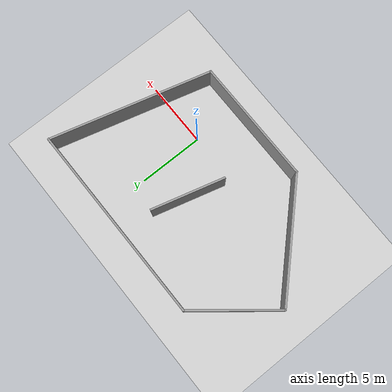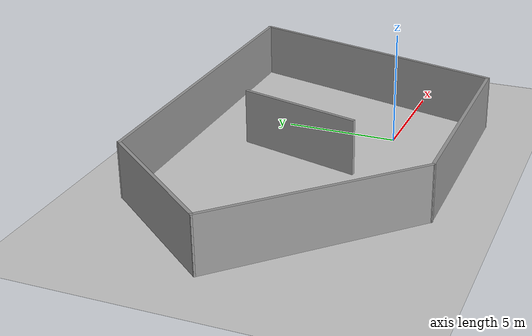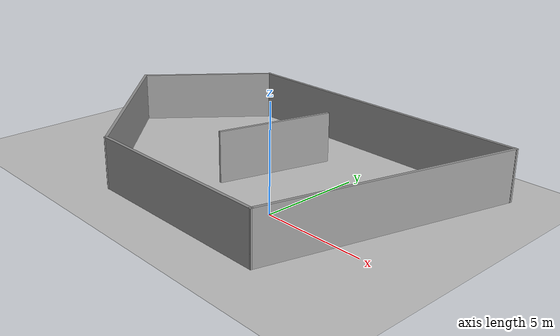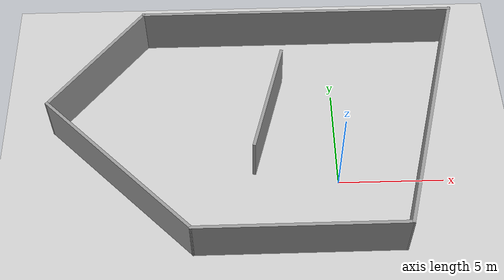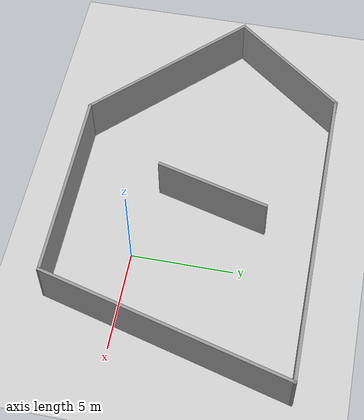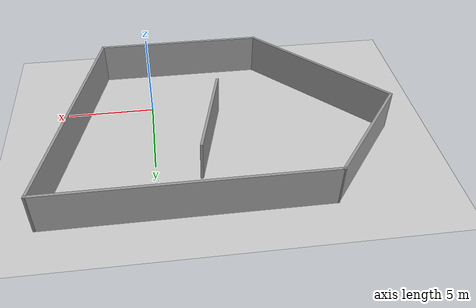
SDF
<sdf version="1.7">
 <world name="default">
  <light name="sun" type="directional">
   <pose>0 0 10 0 -0 0</pose>
   <diffuse>0.8 0.8 0.8 1</diffuse>
   <specular>0.2 0.2 0.2 1</specular>
   <attenuation>
    <range>1000</range>
    <constant>0.9</constant>
    <linear>0.01</linear>
    <quadratic>0.001</quadratic>
   </attenuation>
   <direction>-0.5 0.1 -0.9</direction>
   <spot><inner_angle>0</inner_angle><outer_angle>0</outer_angle><falloff>0</falloff></spot>
  </light>
  <model name="ground_plane">
   <static>1</static>
   <link name="link">
    <collision name="collision">
     <geometry><plane><normal>0 0 1</normal><size>100 100</size></plane></geometry>
     <surface>
      <contact><collide_bitmask>65535</collide_bitmask></contact>
      <friction><ode><mu>100</mu><mu2>50</mu2></ode></friction>
     </surface>
    </collision>
    <visual name="visual">
     <cast_shadows>0</cast_shadows>
     <geometry><plane><normal>0 0 1</normal><size>100 100</size></plane></geometry>
     <material>
      <script><uri>file://media/materials/scripts/gazebo.material</uri><name>Gazebo/Grey</name></script>
     </material>
    </visual>
   </link>
  </model>
  <gravity>0 0 -9.8</gravity>
  <magnetic_field>6e-06 2.3e-05 -4.2e-05</magnetic_field>
  <atmosphere type="adiabatic"/>
  <physics type="ode">
   <max_step_size>0.001</max_step_size>
   <real_time_factor>1</real_time_factor>
   <real_time_update_rate>1000</real_time_update_rate>
  </physics>
  <scene><ambient>0.4 0.4 0.4 1</ambient><background>0.7 0.7 0.7 1</background><shadows>1</shadows></scene>
  <spherical_coordinates>
   <surface_model>EARTH_WGS84</surface_model>
   <latitude_deg>0</latitude_deg>
   <longitude_deg>0</longitude_deg>
   <elevation>0</elevation>
   <heading_deg>0</heading_deg>
  </spherical_coordinates>
  <model name="Untitled">
   <pose>-3.75183 2.53512 0 0 -0 0</pose>
   <link name="Wall_17">
    <collision name="Wall_17_Collision">
     <geometry><box><size>15.5 0.15 2.5</size></box></geometry>
     <pose>0 0 1.25 0 -0 0</pose>
    </collision>
    <visual name="Wall_17_Visual">
     <pose>0 0 1.25 0 -0 0</pose>
     <geometry><box><size>15.5 0.15 2.5</size></box></geometry>
     <material>
      <script><uri>file://media/materials/scripts/gazebo.material</uri><name>Gazebo/Grey</name></script>
      <ambient>1 1 1 1</ambient>
     </material>
     <meta><layer>0</layer></meta>
    </visual>
    <pose>2.15678 6.08566 0 0 -0 0</pose>
   </link>
   <link name="Wall_18">
    <collision name="Wall_18_Collision">
     <geometry><box><size>12.75 0.15 2.5</size></box></geometry>
     <pose>0 0 1.25 0 -0 0</pose>
    </collision>
    <visual name="Wall_18_Visual">
     <pose>0 0 1.25 0 -0 0</pose>
     <geometry><box><size>12.75 0.15 2.5</size></box></geometry>
     <material>
      <script><uri>file://media/materials/scripts/gazebo.material</uri><name>Gazebo/Grey</name></script>
      <ambient>1 1 1 1</ambient>
     </material>
     <meta><layer>0</layer></meta>
    </visual>
    <pose>8.20122 0.000329 0 0 -0 -1.8326</pose>
   </link>
   <link name="Wall_19">
    <collision name="Wall_19_Collision">
     <geometry><box><size>9.75 0.15 2.5</size></box></geometry>
     <pose>0 0 1.25 0 -0 0</pose>
    </collision>
    <visual name="Wall_19_Visual">
     <pose>0 0 1.25 0 -0 0</pose>
     <geometry><box><size>9.75 0.15 2.5</size></box></geometry>
     <material>
      <script><uri>file://media/materials/scripts/gazebo.material</uri><name>Gazebo/Grey</name></script>
      <ambient>1 1 1 1</ambient>
     </material>
     <meta><layer>0</layer></meta>
    </visual>
    <pose>1.77066 -6.085 0 0 -0 3.14159</pose>
   </link>
   <link name="Wall_20">
    <collision name="Wall_20_Collision">
     <geometry><box><size>9.75 0.15 2.5</size></box></geometry>
     <pose>0 0 1.25 0 -0 0</pose>
    </collision>
    <visual name="Wall_20_Visual">
     <pose>0 0 1.25 0 -0 0</pose>
     <geometry><box><size>9.75 0.15 2.5</size></box></geometry>
     <material>
      <script><uri>file://media/materials/scripts/gazebo.material</uri><name>Gazebo/Grey</name></script>
      <ambient>1 1 1 1</ambient>
     </material>
     <meta><layer>0</layer></meta>
    </visual>
    <pose>-6.42345 -2.69089 0 0 -0 2.35619</pose>
   </link>
   <link name="Wall_21">
    <collision name="Wall_21_Collision">
     <geometry><box><size>7.03876 0.15 2.5</size></box></geometry>
     <pose>0 0 1.25 0 -0 0</pose>
    </collision>
    <visual name="Wall_21_Visual">
     <pose>0 0 1.25 0 -0 0</pose>
     <geometry><box><size>7.03876 0.15 2.5</size></box></geometry>
     <material>
      <script><uri>file://media/materials/scripts/gazebo.material</uri><name>Gazebo/Grey</name></script>
      <ambient>1 1 1 1</ambient>
     </material>
     <meta><layer>0</layer></meta>
    </visual>
    <pose>-7.66789 3.39444 0 0 -0 0.896804</pose>
   </link>
   <link name="Wall_23">
    <collision name="Wall_23_Collision">
     <geometry><box><size>5.75 0.15 2.5</size></box></geometry>
     <pose>0 0 1.25 0 -0 0</pose>
    </collision>
    <visual name="Wall_23_Visual">
     <pose>0 0 1.25 0 -0 0</pose>
     <geometry><box><size>5.75 0.15 2.5</size></box></geometry>
     <material>
      <script><uri>file://media/materials/scripts/gazebo.material</uri><name>Gazebo/Grey</name></script>
      <ambient>1 1 1 1</ambient>
     </material>
     <meta><layer>0</layer></meta>
    </visual>
    <pose>0.549763 0.833815 0 0 -0 -1.8326</pose>
   </link>
   <static>1</static>
  </model>
 </world>
</sdf>
